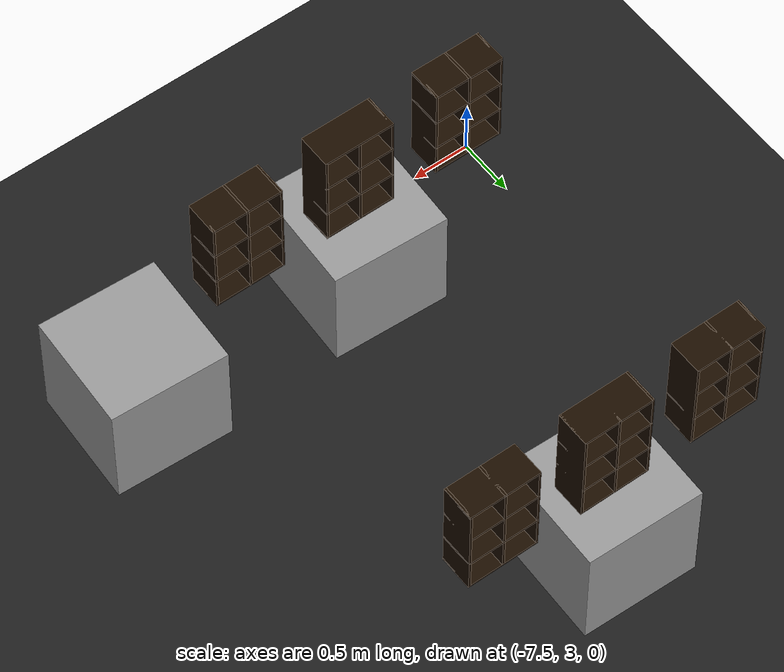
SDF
<sdf version="1.7">
 <world name="default">
  <model name="ground_plane">
   <static>1</static>
   <link name="link">
    <collision name="collision">
     <geometry><plane><normal>0 0 1</normal><size>100 100</size></plane></geometry>
     <surface><friction><ode><mu>100</mu><mu2>50</mu2></ode></friction></surface>
    </collision>
    <visual name="visual">
     <cast_shadows>0</cast_shadows>
     <geometry><plane><normal>0 0 1</normal><size>100 100</size></plane></geometry>
     <material>
      <script><uri>file://media/materials/scripts/gazebo.material</uri><name>Gazebo/BlackTransparent</name></script>
     </material>
    </visual>
   </link>
  </model>
  <model name="unit_box">
   <pose>-6.01457 6.50784 0.5 0 0 -0.028631</pose>
   <link name="link">
    <inertial>
     <mass>1</mass>
     <inertia>
      <ixx>0.166667</ixx>
      <ixy>0</ixy>
      <ixz>0</ixz>
      <iyy>0.166667</iyy>
      <iyz>0</iyz>
      <izz>0.166667</izz>
     </inertia>
    </inertial>
    <collision name="collision"><geometry><box><size>1 1 1</size></box></geometry></collision>
    <visual name="visual">
     <geometry><box><size>1 1 1</size></box></geometry>
     <material>
      <script><name>Gazebo/Grey</name><uri>file://media/materials/scripts/gazebo.material</uri></script>
     </material>
    </visual>
   </link>
  </model>
  <model name="unit_box_0">
   <pose>-6.04021 3.50704 0.5 0 0 -0.048188</pose>
   <link name="link">
    <inertial>
     <mass>1</mass>
     <inertia>
      <ixx>0.166667</ixx>
      <ixy>0</ixy>
      <ixz>0</ixz>
      <iyy>0.166667</iyy>
      <iyz>0</iyz>
      <izz>0.166667</izz>
     </inertia>
    </inertial>
    <collision name="collision"><geometry><box><size>1 1 1</size></box></geometry></collision>
    <visual name="visual">
     <geometry><box><size>1 1 1</size></box></geometry>
     <material>
      <script><name>Gazebo/Grey</name><uri>file://media/materials/scripts/gazebo.material</uri></script>
     </material>
    </visual>
   </link>
  </model>
  <model name="unit_box_10">
   <pose>-4.03641 3.51653 0.5 0 0 -0.047204</pose>
   <link name="link">
    <inertial>
     <mass>1</mass>
     <inertia>
      <ixx>0.166667</ixx>
      <ixy>0</ixy>
      <ixz>0</ixz>
      <iyy>0.166667</iyy>
      <iyz>0</iyz>
      <izz>0.166667</izz>
     </inertia>
    </inertial>
    <collision name="collision"><geometry><box><size>1 1 1</size></box></geometry></collision>
    <visual name="visual">
     <geometry><box><size>1 1 1</size></box></geometry>
     <material>
      <script><name>Gazebo/Grey</name><uri>file://media/materials/scripts/gazebo.material</uri></script>
     </material>
    </visual>
   </link>
  </model>
  <model name="6_Cube_StorageE">
   <link name="Wall_0">
    <pose>0 0 0.01 0 -0 0</pose>
    <inertial>
     <mass>1.6201</mass>
     <inertia><ixx>0.0119</ixx><iyy>0.0631</iyy><izz>0.0513</izz><ixy>0</ixy><ixz>0</ixz><iyz>0</iyz></inertia>
    </inertial>
    <collision name="Wall_0_Collision"><geometry><box><size>0.616 0.296 0.02</size></box></geometry></collision>
    <visual name="Wall_0_Visual">
     <geometry><box><size>0.616 0.296 0.02</size></box></geometry>
     <material>
      <script><uri>file://media/materials/scripts/gazebo.material</uri><name>Gazebo/Grey</name></script>
      <ambient>0.105882 0.0509804 0 1</ambient>
     </material>
    </visual>
   </link>
   <joint name="0_2" type="fixed">
    <pose>-0.308 0 0 0 -0 0</pose>
    <parent>Wall_2</parent>
    <child>Wall_0</child>
    <axis><xyz>1 0 0</xyz><limit><lower>-1e+16</lower><upper>1e+16</upper></limit></axis>
   </joint>
   <joint name="0_12" type="fixed">
    <parent>Wall_12</parent>
    <child>Wall_0</child>
    <axis><xyz>0 0 1</xyz><limit><lower>-1e+16</lower><upper>1e+16</upper></limit></axis>
   </joint>
   <joint name="0_4" type="fixed">
    <pose>0.308 0 0 0 -0 0</pose>
    <parent>Wall_4</parent>
    <child>Wall_0</child>
    <axis><xyz>1 0 0</xyz><limit><lower>-1e+16</lower><upper>1e+16</upper></limit></axis>
   </joint>
   <link name="Wall_10">
    <pose>0 0 0.61 0 -0 0</pose>
    <inertial>
     <mass>1.6201</mass>
     <inertia><ixx>0.0119</ixx><iyy>0.0631</iyy><izz>0.0513</izz><ixy>0</ixy><ixz>0</ixz><iyz>0</iyz></inertia>
    </inertial>
    <collision name="Wall_10_Collision"><geometry><box><size>0.616 0.296 0.02</size></box></geometry></collision>
    <visual name="Wall_10_Visual">
     <geometry><box><size>0.616 0.296 0.02</size></box></geometry>
     <material>
      <script><uri>file://media/materials/scripts/gazebo.material</uri><name>Gazebo/Grey</name></script>
      <ambient>0.105882 0.0509804 0 1</ambient>
     </material>
    </visual>
   </link>
   <joint name="10_2" type="fixed">
    <pose>-0.308 0 0 0 -0 0</pose>
    <parent>Wall_2</parent>
    <child>Wall_10</child>
    <axis><xyz>1 0 0</xyz><limit><lower>-1e+16</lower><upper>1e+16</upper></limit></axis>
   </joint>
   <joint name="10_12" type="fixed">
    <parent>Wall_12</parent>
    <child>Wall_10</child>
    <axis><xyz>0 0 1</xyz><limit><lower>-1e+16</lower><upper>1e+16</upper></limit></axis>
   </joint>
   <joint name="10_4" type="fixed">
    <pose>0.308 0 0 0 -0 0</pose>
    <parent>Wall_4</parent>
    <child>Wall_10</child>
    <axis><xyz>1 0 0</xyz><limit><lower>-1e+16</lower><upper>1e+16</upper></limit></axis>
   </joint>
   <link name="Wall_12">
    <pose>0 0 0.4575 0 -0 0</pose>
    <inertial>
     <mass>2.4065</mass>
     <inertia><ixx>0.0177</ixx><iyy>0.1855</iyy><izz>0.168</izz><ixy>0</ixy><ixz>0</ixz><iyz>0</iyz></inertia>
    </inertial>
    <collision name="Wall_12_Collision"><geometry><box><size>0.02 0.296 0.915</size></box></geometry></collision>
    <visual name="Wall_12_Visual">
     <geometry><box><size>0.02 0.296 0.915</size></box></geometry>
     <material>
      <script><uri>file://media/materials/scripts/gazebo.material</uri><name>Gazebo/Grey</name></script>
      <ambient>0.105882 0.0509804 0 1</ambient>
     </material>
    </visual>
   </link>
   <link name="Wall_2">
    <pose>-0.298 0 0.4575 0 -0 0</pose>
    <inertial>
     <mass>2.4065</mass>
     <inertia><ixx>0.0177</ixx><iyy>0.1855</iyy><izz>0.168</izz><ixy>0</ixy><ixz>0</ixz><iyz>0</iyz></inertia>
    </inertial>
    <collision name="Wall_2_Collision"><geometry><box><size>0.02 0.296 0.915</size></box></geometry></collision>
    <visual name="Wall_2_Visual">
     <geometry><box><size>0.02 0.296 0.915</size></box></geometry>
     <material>
      <script><uri>file://media/materials/scripts/gazebo.material</uri><name>Gazebo/Grey</name></script>
      <ambient>0.105882 0.0509804 0 1</ambient>
     </material>
    </visual>
   </link>
   <link name="Wall_4">
    <pose>0.298 0 0.4575 0 -0 0</pose>
    <inertial>
     <mass>2.4065</mass>
     <inertia><ixx>0.0177</ixx><iyy>0.1855</iyy><izz>0.168</izz><ixy>0</ixy><ixz>0</ixz><iyz>0</iyz></inertia>
    </inertial>
    <collision name="Wall_4_Collision"><geometry><box><size>0.02 0.296 0.915</size></box></geometry></collision>
    <visual name="Wall_4_Visual">
     <geometry><box><size>0.02 0.296 0.915</size></box></geometry>
     <material>
      <script><uri>file://media/materials/scripts/gazebo.material</uri><name>Gazebo/Grey</name></script>
      <ambient>0.105882 0.0509804 0 1</ambient>
     </material>
    </visual>
   </link>
   <link name="Wall_6">
    <pose>0 0 0.905 0 -0 0</pose>
    <inertial>
     <mass>1.6201</mass>
     <inertia><ixx>0.0119</ixx><iyy>0.0631</iyy><izz>0.0513</izz><ixy>0</ixy><ixz>0</ixz><iyz>0</iyz></inertia>
    </inertial>
    <collision name="Wall_6_Collision"><geometry><box><size>0.616 0.296 0.02</size></box></geometry></collision>
    <visual name="Wall_6_Visual">
     <geometry><box><size>0.616 0.296 0.02</size></box></geometry>
     <material>
      <script><uri>file://media/materials/scripts/gazebo.material</uri><name>Gazebo/Grey</name></script>
      <ambient>0.105882 0.0509804 0 1</ambient>
     </material>
    </visual>
   </link>
   <joint name="6_2" type="fixed">
    <pose>-0.308 0 0 0 -0 0</pose>
    <parent>Wall_2</parent>
    <child>Wall_6</child>
    <axis><xyz>2 0 0</xyz><limit><lower>-1e+16</lower><upper>1e+16</upper></limit></axis>
   </joint>
   <joint name="6_12" type="fixed">
    <parent>Wall_12</parent>
    <child>Wall_6</child>
    <axis><xyz>0 0 1</xyz><limit><lower>-1e+16</lower><upper>1e+16</upper></limit></axis>
   </joint>
   <joint name="6_4" type="fixed">
    <pose>0.308 0 0 0 -0 0</pose>
    <parent>Wall_4</parent>
    <child>Wall_6</child>
    <axis><xyz>1 0 0</xyz><limit><lower>-1e+16</lower><upper>1e+16</upper></limit></axis>
   </joint>
   <link name="Wall_8">
    <pose>0 0 0.305 0 -0 0</pose>
    <inertial>
     <mass>1.6201</mass>
     <inertia><ixx>0.0119</ixx><iyy>0.0631</iyy><izz>0.0513</izz><ixy>0</ixy><ixz>0</ixz><iyz>0</iyz></inertia>
    </inertial>
    <collision name="Wall_8_Collision"><geometry><box><size>0.616 0.296 0.02</size></box></geometry></collision>
    <visual name="Wall_8_Visual">
     <geometry><box><size>0.616 0.296 0.02</size></box></geometry>
     <material>
      <script><uri>file://media/materials/scripts/gazebo.material</uri><name>Gazebo/Grey</name></script>
      <ambient>0.105882 0.0509804 0 1</ambient>
     </material>
    </visual>
   </link>
   <joint name="8_2" type="fixed">
    <pose>-0.308 0 0 0 -0 0</pose>
    <parent>Wall_2</parent>
    <child>Wall_8</child>
    <axis><xyz>1 0 0</xyz><limit><lower>-1e+16</lower><upper>1e+16</upper></limit></axis>
   </joint>
   <joint name="8_12" type="fixed">
    <parent>Wall_12</parent>
    <child>Wall_8</child>
    <axis><xyz>0 0 1</xyz><limit><lower>-1e+16</lower><upper>1e+16</upper></limit></axis>
   </joint>
   <joint name="8_4" type="fixed">
    <pose>0.308 0 0 0 -0 0</pose>
    <parent>Wall_4</parent>
    <child>Wall_8</child>
    <axis><xyz>1 0 0</xyz><limit><lower>-1e+16</lower><upper>1e+16</upper></limit></axis>
   </joint>
   <static>1</static>
   <pose>-7 6.5 1.01 0 -0 0</pose>
  </model>
  <model name="6_Cube_StorageE_clone">
   <link name="Wall_0">
    <pose>0 0 0.01 0 -0 0</pose>
    <inertial>
     <mass>1.6201</mass>
     <inertia><ixx>0.0119</ixx><iyy>0.0631</iyy><izz>0.0513</izz><ixy>0</ixy><ixz>0</ixz><iyz>0</iyz></inertia>
    </inertial>
    <collision name="Wall_0_Collision"><geometry><box><size>0.616 0.296 0.02</size></box></geometry></collision>
    <visual name="Wall_0_Visual">
     <geometry><box><size>0.616 0.296 0.02</size></box></geometry>
     <material>
      <script><uri>file://media/materials/scripts/gazebo.material</uri><name>Gazebo/Grey</name></script>
      <ambient>0.105882 0.0509804 0 1</ambient>
     </material>
    </visual>
   </link>
   <joint name="0_2" type="fixed">
    <pose>-0.308 0 0 0 -0 0</pose>
    <parent>Wall_2</parent>
    <child>Wall_0</child>
    <axis><xyz>1 0 0</xyz><limit><lower>-1e+16</lower><upper>1e+16</upper></limit></axis>
   </joint>
   <joint name="0_12" type="fixed">
    <parent>Wall_12</parent>
    <child>Wall_0</child>
    <axis><xyz>0 0 1</xyz><limit><lower>-1e+16</lower><upper>1e+16</upper></limit></axis>
   </joint>
   <joint name="0_4" type="fixed">
    <pose>0.308 0 0 0 -0 0</pose>
    <parent>Wall_4</parent>
    <child>Wall_0</child>
    <axis><xyz>1 0 0</xyz><limit><lower>-1e+16</lower><upper>1e+16</upper></limit></axis>
   </joint>
   <link name="Wall_10">
    <pose>0 0 0.61 0 -0 0</pose>
    <inertial>
     <mass>1.6201</mass>
     <inertia><ixx>0.0119</ixx><iyy>0.0631</iyy><izz>0.0513</izz><ixy>0</ixy><ixz>0</ixz><iyz>0</iyz></inertia>
    </inertial>
    <collision name="Wall_10_Collision"><geometry><box><size>0.616 0.296 0.02</size></box></geometry></collision>
    <visual name="Wall_10_Visual">
     <geometry><box><size>0.616 0.296 0.02</size></box></geometry>
     <material>
      <script><uri>file://media/materials/scripts/gazebo.material</uri><name>Gazebo/Grey</name></script>
      <ambient>0.105882 0.0509804 0 1</ambient>
     </material>
    </visual>
   </link>
   <joint name="10_2" type="fixed">
    <pose>-0.308 0 0 0 -0 0</pose>
    <parent>Wall_2</parent>
    <child>Wall_10</child>
    <axis><xyz>1 0 0</xyz><limit><lower>-1e+16</lower><upper>1e+16</upper></limit></axis>
   </joint>
   <joint name="10_12" type="fixed">
    <parent>Wall_12</parent>
    <child>Wall_10</child>
    <axis><xyz>0 0 1</xyz><limit><lower>-1e+16</lower><upper>1e+16</upper></limit></axis>
   </joint>
   <joint name="10_4" type="fixed">
    <pose>0.308 0 0 0 -0 0</pose>
    <parent>Wall_4</parent>
    <child>Wall_10</child>
    <axis><xyz>1 0 0</xyz><limit><lower>-1e+16</lower><upper>1e+16</upper></limit></axis>
   </joint>
   <link name="Wall_12">
    <pose>0 0 0.4575 0 -0 0</pose>
    <inertial>
     <mass>2.4065</mass>
     <inertia><ixx>0.0177</ixx><iyy>0.1855</iyy><izz>0.168</izz><ixy>0</ixy><ixz>0</ixz><iyz>0</iyz></inertia>
    </inertial>
    <collision name="Wall_12_Collision"><geometry><box><size>0.02 0.296 0.915</size></box></geometry></collision>
    <visual name="Wall_12_Visual">
     <geometry><box><size>0.02 0.296 0.915</size></box></geometry>
     <material>
      <script><uri>file://media/materials/scripts/gazebo.material</uri><name>Gazebo/Grey</name></script>
      <ambient>0.105882 0.0509804 0 1</ambient>
     </material>
    </visual>
   </link>
   <link name="Wall_2">
    <pose>-0.298 0 0.4575 0 -0 0</pose>
    <inertial>
     <mass>2.4065</mass>
     <inertia><ixx>0.0177</ixx><iyy>0.1855</iyy><izz>0.168</izz><ixy>0</ixy><ixz>0</ixz><iyz>0</iyz></inertia>
    </inertial>
    <collision name="Wall_2_Collision"><geometry><box><size>0.02 0.296 0.915</size></box></geometry></collision>
    <visual name="Wall_2_Visual">
     <geometry><box><size>0.02 0.296 0.915</size></box></geometry>
     <material>
      <script><uri>file://media/materials/scripts/gazebo.material</uri><name>Gazebo/Grey</name></script>
      <ambient>0.105882 0.0509804 0 1</ambient>
     </material>
    </visual>
   </link>
   <link name="Wall_4">
    <pose>0.298 0 0.4575 0 -0 0</pose>
    <inertial>
     <mass>2.4065</mass>
     <inertia><ixx>0.0177</ixx><iyy>0.1855</iyy><izz>0.168</izz><ixy>0</ixy><ixz>0</ixz><iyz>0</iyz></inertia>
    </inertial>
    <collision name="Wall_4_Collision"><geometry><box><size>0.02 0.296 0.915</size></box></geometry></collision>
    <visual name="Wall_4_Visual">
     <geometry><box><size>0.02 0.296 0.915</size></box></geometry>
     <material>
      <script><uri>file://media/materials/scripts/gazebo.material</uri><name>Gazebo/Grey</name></script>
      <ambient>0.105882 0.0509804 0 1</ambient>
     </material>
    </visual>
   </link>
   <link name="Wall_6">
    <pose>0 0 0.905 0 -0 0</pose>
    <inertial>
     <mass>1.6201</mass>
     <inertia><ixx>0.0119</ixx><iyy>0.0631</iyy><izz>0.0513</izz><ixy>0</ixy><ixz>0</ixz><iyz>0</iyz></inertia>
    </inertial>
    <collision name="Wall_6_Collision"><geometry><box><size>0.616 0.296 0.02</size></box></geometry></collision>
    <visual name="Wall_6_Visual">
     <geometry><box><size>0.616 0.296 0.02</size></box></geometry>
     <material>
      <script><uri>file://media/materials/scripts/gazebo.material</uri><name>Gazebo/Grey</name></script>
      <ambient>0.105882 0.0509804 0 1</ambient>
     </material>
    </visual>
   </link>
   <joint name="6_2" type="fixed">
    <pose>-0.308 0 0 0 -0 0</pose>
    <parent>Wall_2</parent>
    <child>Wall_6</child>
    <axis><xyz>2 0 0</xyz><limit><lower>-1e+16</lower><upper>1e+16</upper></limit></axis>
   </joint>
   <joint name="6_12" type="fixed">
    <parent>Wall_12</parent>
    <child>Wall_6</child>
    <axis><xyz>0 0 1</xyz><limit><lower>-1e+16</lower><upper>1e+16</upper></limit></axis>
   </joint>
   <joint name="6_4" type="fixed">
    <pose>0.308 0 0 0 -0 0</pose>
    <parent>Wall_4</parent>
    <child>Wall_6</child>
    <axis><xyz>1 0 0</xyz><limit><lower>-1e+16</lower><upper>1e+16</upper></limit></axis>
   </joint>
   <link name="Wall_8">
    <pose>0 0 0.305 0 -0 0</pose>
    <inertial>
     <mass>1.6201</mass>
     <inertia><ixx>0.0119</ixx><iyy>0.0631</iyy><izz>0.0513</izz><ixy>0</ixy><ixz>0</ixz><iyz>0</iyz></inertia>
    </inertial>
    <collision name="Wall_8_Collision"><geometry><box><size>0.616 0.296 0.02</size></box></geometry></collision>
    <visual name="Wall_8_Visual">
     <geometry><box><size>0.616 0.296 0.02</size></box></geometry>
     <material>
      <script><uri>file://media/materials/scripts/gazebo.material</uri><name>Gazebo/Grey</name></script>
      <ambient>0.105882 0.0509804 0 1</ambient>
     </material>
    </visual>
   </link>
   <joint name="8_2" type="fixed">
    <pose>-0.308 0 0 0 -0 0</pose>
    <parent>Wall_2</parent>
    <child>Wall_8</child>
    <axis><xyz>1 0 0</xyz><limit><lower>-1e+16</lower><upper>1e+16</upper></limit></axis>
   </joint>
   <joint name="8_12" type="fixed">
    <parent>Wall_12</parent>
    <child>Wall_8</child>
    <axis><xyz>0 0 1</xyz><limit><lower>-1e+16</lower><upper>1e+16</upper></limit></axis>
   </joint>
   <joint name="8_4" type="fixed">
    <pose>0.308 0 0 0 -0 0</pose>
    <parent>Wall_4</parent>
    <child>Wall_8</child>
    <axis><xyz>1 0 0</xyz><limit><lower>-1e+16</lower><upper>1e+16</upper></limit></axis>
   </joint>
   <static>1</static>
   <pose>-6 6.5 1.01 0 -0 0</pose>
  </model>
  <model name="6_Cube_StorageE_clone_0">
   <link name="Wall_0">
    <pose>0 0 0.01 0 -0 0</pose>
    <inertial>
     <mass>1.6201</mass>
     <inertia><ixx>0.0119</ixx><iyy>0.0631</iyy><izz>0.0513</izz><ixy>0</ixy><ixz>0</ixz><iyz>0</iyz></inertia>
    </inertial>
    <collision name="Wall_0_Collision"><geometry><box><size>0.616 0.296 0.02</size></box></geometry></collision>
    <visual name="Wall_0_Visual">
     <geometry><box><size>0.616 0.296 0.02</size></box></geometry>
     <material>
      <script><uri>file://media/materials/scripts/gazebo.material</uri><name>Gazebo/Grey</name></script>
      <ambient>0.105882 0.0509804 0 1</ambient>
     </material>
    </visual>
   </link>
   <joint name="0_2" type="fixed">
    <pose>-0.308 0 0 0 -0 0</pose>
    <parent>Wall_2</parent>
    <child>Wall_0</child>
    <axis><xyz>1 0 0</xyz><limit><lower>-1e+16</lower><upper>1e+16</upper></limit></axis>
   </joint>
   <joint name="0_12" type="fixed">
    <parent>Wall_12</parent>
    <child>Wall_0</child>
    <axis><xyz>0 0 1</xyz><limit><lower>-1e+16</lower><upper>1e+16</upper></limit></axis>
   </joint>
   <joint name="0_4" type="fixed">
    <pose>0.308 0 0 0 -0 0</pose>
    <parent>Wall_4</parent>
    <child>Wall_0</child>
    <axis><xyz>1 0 0</xyz><limit><lower>-1e+16</lower><upper>1e+16</upper></limit></axis>
   </joint>
   <link name="Wall_10">
    <pose>0 0 0.61 0 -0 0</pose>
    <inertial>
     <mass>1.6201</mass>
     <inertia><ixx>0.0119</ixx><iyy>0.0631</iyy><izz>0.0513</izz><ixy>0</ixy><ixz>0</ixz><iyz>0</iyz></inertia>
    </inertial>
    <collision name="Wall_10_Collision"><geometry><box><size>0.616 0.296 0.02</size></box></geometry></collision>
    <visual name="Wall_10_Visual">
     <geometry><box><size>0.616 0.296 0.02</size></box></geometry>
     <material>
      <script><uri>file://media/materials/scripts/gazebo.material</uri><name>Gazebo/Grey</name></script>
      <ambient>0.105882 0.0509804 0 1</ambient>
     </material>
    </visual>
   </link>
   <joint name="10_2" type="fixed">
    <pose>-0.308 0 0 0 -0 0</pose>
    <parent>Wall_2</parent>
    <child>Wall_10</child>
    <axis><xyz>1 0 0</xyz><limit><lower>-1e+16</lower><upper>1e+16</upper></limit></axis>
   </joint>
   <joint name="10_12" type="fixed">
    <parent>Wall_12</parent>
    <child>Wall_10</child>
    <axis><xyz>0 0 1</xyz><limit><lower>-1e+16</lower><upper>1e+16</upper></limit></axis>
   </joint>
   <joint name="10_4" type="fixed">
    <pose>0.308 0 0 0 -0 0</pose>
    <parent>Wall_4</parent>
    <child>Wall_10</child>
    <axis><xyz>1 0 0</xyz><limit><lower>-1e+16</lower><upper>1e+16</upper></limit></axis>
   </joint>
   <link name="Wall_12">
    <pose>0 0 0.4575 0 -0 0</pose>
    <inertial>
     <mass>2.4065</mass>
     <inertia><ixx>0.0177</ixx><iyy>0.1855</iyy><izz>0.168</izz><ixy>0</ixy><ixz>0</ixz><iyz>0</iyz></inertia>
    </inertial>
    <collision name="Wall_12_Collision"><geometry><box><size>0.02 0.296 0.915</size></box></geometry></collision>
    <visual name="Wall_12_Visual">
     <geometry><box><size>0.02 0.296 0.915</size></box></geometry>
     <material>
      <script><uri>file://media/materials/scripts/gazebo.material</uri><name>Gazebo/Grey</name></script>
      <ambient>0.105882 0.0509804 0 1</ambient>
     </material>
    </visual>
   </link>
   <link name="Wall_2">
    <pose>-0.298 0 0.4575 0 -0 0</pose>
    <inertial>
     <mass>2.4065</mass>
     <inertia><ixx>0.0177</ixx><iyy>0.1855</iyy><izz>0.168</izz><ixy>0</ixy><ixz>0</ixz><iyz>0</iyz></inertia>
    </inertial>
    <collision name="Wall_2_Collision"><geometry><box><size>0.02 0.296 0.915</size></box></geometry></collision>
    <visual name="Wall_2_Visual">
     <geometry><box><size>0.02 0.296 0.915</size></box></geometry>
     <material>
      <script><uri>file://media/materials/scripts/gazebo.material</uri><name>Gazebo/Grey</name></script>
      <ambient>0.105882 0.0509804 0 1</ambient>
     </material>
    </visual>
   </link>
   <link name="Wall_4">
    <pose>0.298 0 0.4575 0 -0 0</pose>
    <inertial>
     <mass>2.4065</mass>
     <inertia><ixx>0.0177</ixx><iyy>0.1855</iyy><izz>0.168</izz><ixy>0</ixy><ixz>0</ixz><iyz>0</iyz></inertia>
    </inertial>
    <collision name="Wall_4_Collision"><geometry><box><size>0.02 0.296 0.915</size></box></geometry></collision>
    <visual name="Wall_4_Visual">
     <geometry><box><size>0.02 0.296 0.915</size></box></geometry>
     <material>
      <script><uri>file://media/materials/scripts/gazebo.material</uri><name>Gazebo/Grey</name></script>
      <ambient>0.105882 0.0509804 0 1</ambient>
     </material>
    </visual>
   </link>
   <link name="Wall_6">
    <pose>0 0 0.905 0 -0 0</pose>
    <inertial>
     <mass>1.6201</mass>
     <inertia><ixx>0.0119</ixx><iyy>0.0631</iyy><izz>0.0513</izz><ixy>0</ixy><ixz>0</ixz><iyz>0</iyz></inertia>
    </inertial>
    <collision name="Wall_6_Collision"><geometry><box><size>0.616 0.296 0.02</size></box></geometry></collision>
    <visual name="Wall_6_Visual">
     <geometry><box><size>0.616 0.296 0.02</size></box></geometry>
     <material>
      <script><uri>file://media/materials/scripts/gazebo.material</uri><name>Gazebo/Grey</name></script>
      <ambient>0.105882 0.0509804 0 1</ambient>
     </material>
    </visual>
   </link>
   <joint name="6_2" type="fixed">
    <pose>-0.308 0 0 0 -0 0</pose>
    <parent>Wall_2</parent>
    <child>Wall_6</child>
    <axis><xyz>2 0 0</xyz><limit><lower>-1e+16</lower><upper>1e+16</upper></limit></axis>
   </joint>
   <joint name="6_12" type="fixed">
    <parent>Wall_12</parent>
    <child>Wall_6</child>
    <axis><xyz>0 0 1</xyz><limit><lower>-1e+16</lower><upper>1e+16</upper></limit></axis>
   </joint>
   <joint name="6_4" type="fixed">
    <pose>0.308 0 0 0 -0 0</pose>
    <parent>Wall_4</parent>
    <child>Wall_6</child>
    <axis><xyz>1 0 0</xyz><limit><lower>-1e+16</lower><upper>1e+16</upper></limit></axis>
   </joint>
   <link name="Wall_8">
    <pose>0 0 0.305 0 -0 0</pose>
    <inertial>
     <mass>1.6201</mass>
     <inertia><ixx>0.0119</ixx><iyy>0.0631</iyy><izz>0.0513</izz><ixy>0</ixy><ixz>0</ixz><iyz>0</iyz></inertia>
    </inertial>
    <collision name="Wall_8_Collision"><geometry><box><size>0.616 0.296 0.02</size></box></geometry></collision>
    <visual name="Wall_8_Visual">
     <geometry><box><size>0.616 0.296 0.02</size></box></geometry>
     <material>
      <script><uri>file://media/materials/scripts/gazebo.material</uri><name>Gazebo/Grey</name></script>
      <ambient>0.105882 0.0509804 0 1</ambient>
     </material>
    </visual>
   </link>
   <joint name="8_2" type="fixed">
    <pose>-0.308 0 0 0 -0 0</pose>
    <parent>Wall_2</parent>
    <child>Wall_8</child>
    <axis><xyz>1 0 0</xyz><limit><lower>-1e+16</lower><upper>1e+16</upper></limit></axis>
   </joint>
   <joint name="8_12" type="fixed">
    <parent>Wall_12</parent>
    <child>Wall_8</child>
    <axis><xyz>0 0 1</xyz><limit><lower>-1e+16</lower><upper>1e+16</upper></limit></axis>
   </joint>
   <joint name="8_4" type="fixed">
    <pose>0.308 0 0 0 -0 0</pose>
    <parent>Wall_4</parent>
    <child>Wall_8</child>
    <axis><xyz>1 0 0</xyz><limit><lower>-1e+16</lower><upper>1e+16</upper></limit></axis>
   </joint>
   <static>1</static>
   <pose>-5 6.5 1.01 0 -0 0</pose>
  </model>
  <model name="6_Cube_StorageE_clone_25">
   <link name="Wall_0">
    <pose>0 0 0.01 0 -0 0</pose>
    <inertial>
     <mass>1.6201</mass>
     <inertia><ixx>0.0119</ixx><iyy>0.0631</iyy><izz>0.0513</izz><ixy>0</ixy><ixz>0</ixz><iyz>0</iyz></inertia>
    </inertial>
    <collision name="Wall_0_Collision"><geometry><box><size>0.616 0.296 0.02</size></box></geometry></collision>
    <visual name="Wall_0_Visual">
     <geometry><box><size>0.616 0.296 0.02</size></box></geometry>
     <material>
      <script><uri>file://media/materials/scripts/gazebo.material</uri><name>Gazebo/Grey</name></script>
      <ambient>0.105882 0.0509804 0 1</ambient>
     </material>
    </visual>
   </link>
   <joint name="0_2" type="fixed">
    <pose>-0.308 0 0 0 -0 0</pose>
    <parent>Wall_2</parent>
    <child>Wall_0</child>
    <axis><xyz>1 0 0</xyz><limit><lower>-1e+16</lower><upper>1e+16</upper></limit></axis>
   </joint>
   <joint name="0_12" type="fixed">
    <parent>Wall_12</parent>
    <child>Wall_0</child>
    <axis><xyz>0 0 1</xyz><limit><lower>-1e+16</lower><upper>1e+16</upper></limit></axis>
   </joint>
   <joint name="0_4" type="fixed">
    <pose>0.308 0 0 0 -0 0</pose>
    <parent>Wall_4</parent>
    <child>Wall_0</child>
    <axis><xyz>1 0 0</xyz><limit><lower>-1e+16</lower><upper>1e+16</upper></limit></axis>
   </joint>
   <link name="Wall_10">
    <pose>0 0 0.61 0 -0 0</pose>
    <inertial>
     <mass>1.6201</mass>
     <inertia><ixx>0.0119</ixx><iyy>0.0631</iyy><izz>0.0513</izz><ixy>0</ixy><ixz>0</ixz><iyz>0</iyz></inertia>
    </inertial>
    <collision name="Wall_10_Collision"><geometry><box><size>0.616 0.296 0.02</size></box></geometry></collision>
    <visual name="Wall_10_Visual">
     <geometry><box><size>0.616 0.296 0.02</size></box></geometry>
     <material>
      <script><uri>file://media/materials/scripts/gazebo.material</uri><name>Gazebo/Grey</name></script>
      <ambient>0.105882 0.0509804 0 1</ambient>
     </material>
    </visual>
   </link>
   <joint name="10_2" type="fixed">
    <pose>-0.308 0 0 0 -0 0</pose>
    <parent>Wall_2</parent>
    <child>Wall_10</child>
    <axis><xyz>1 0 0</xyz><limit><lower>-1e+16</lower><upper>1e+16</upper></limit></axis>
   </joint>
   <joint name="10_12" type="fixed">
    <parent>Wall_12</parent>
    <child>Wall_10</child>
    <axis><xyz>0 0 1</xyz><limit><lower>-1e+16</lower><upper>1e+16</upper></limit></axis>
   </joint>
   <joint name="10_4" type="fixed">
    <pose>0.308 0 0 0 -0 0</pose>
    <parent>Wall_4</parent>
    <child>Wall_10</child>
    <axis><xyz>1 0 0</xyz><limit><lower>-1e+16</lower><upper>1e+16</upper></limit></axis>
   </joint>
   <link name="Wall_12">
    <pose>0 0 0.4575 0 -0 0</pose>
    <inertial>
     <mass>2.4065</mass>
     <inertia><ixx>0.0177</ixx><iyy>0.1855</iyy><izz>0.168</izz><ixy>0</ixy><ixz>0</ixz><iyz>0</iyz></inertia>
    </inertial>
    <collision name="Wall_12_Collision"><geometry><box><size>0.02 0.296 0.915</size></box></geometry></collision>
    <visual name="Wall_12_Visual">
     <geometry><box><size>0.02 0.296 0.915</size></box></geometry>
     <material>
      <script><uri>file://media/materials/scripts/gazebo.material</uri><name>Gazebo/Grey</name></script>
      <ambient>0.105882 0.0509804 0 1</ambient>
     </material>
    </visual>
   </link>
   <link name="Wall_2">
    <pose>-0.298 0 0.4575 0 -0 0</pose>
    <inertial>
     <mass>2.4065</mass>
     <inertia><ixx>0.0177</ixx><iyy>0.1855</iyy><izz>0.168</izz><ixy>0</ixy><ixz>0</ixz><iyz>0</iyz></inertia>
    </inertial>
    <collision name="Wall_2_Collision"><geometry><box><size>0.02 0.296 0.915</size></box></geometry></collision>
    <visual name="Wall_2_Visual">
     <geometry><box><size>0.02 0.296 0.915</size></box></geometry>
     <material>
      <script><uri>file://media/materials/scripts/gazebo.material</uri><name>Gazebo/Grey</name></script>
      <ambient>0.105882 0.0509804 0 1</ambient>
     </material>
    </visual>
   </link>
   <link name="Wall_4">
    <pose>0.298 0 0.4575 0 -0 0</pose>
    <inertial>
     <mass>2.4065</mass>
     <inertia><ixx>0.0177</ixx><iyy>0.1855</iyy><izz>0.168</izz><ixy>0</ixy><ixz>0</ixz><iyz>0</iyz></inertia>
    </inertial>
    <collision name="Wall_4_Collision"><geometry><box><size>0.02 0.296 0.915</size></box></geometry></collision>
    <visual name="Wall_4_Visual">
     <geometry><box><size>0.02 0.296 0.915</size></box></geometry>
     <material>
      <script><uri>file://media/materials/scripts/gazebo.material</uri><name>Gazebo/Grey</name></script>
      <ambient>0.105882 0.0509804 0 1</ambient>
     </material>
    </visual>
   </link>
   <link name="Wall_6">
    <pose>0 0 0.905 0 -0 0</pose>
    <inertial>
     <mass>1.6201</mass>
     <inertia><ixx>0.0119</ixx><iyy>0.0631</iyy><izz>0.0513</izz><ixy>0</ixy><ixz>0</ixz><iyz>0</iyz></inertia>
    </inertial>
    <collision name="Wall_6_Collision"><geometry><box><size>0.616 0.296 0.02</size></box></geometry></collision>
    <visual name="Wall_6_Visual">
     <geometry><box><size>0.616 0.296 0.02</size></box></geometry>
     <material>
      <script><uri>file://media/materials/scripts/gazebo.material</uri><name>Gazebo/Grey</name></script>
      <ambient>0.105882 0.0509804 0 1</ambient>
     </material>
    </visual>
   </link>
   <joint name="6_2" type="fixed">
    <pose>-0.308 0 0 0 -0 0</pose>
    <parent>Wall_2</parent>
    <child>Wall_6</child>
    <axis><xyz>2 0 0</xyz><limit><lower>-1e+16</lower><upper>1e+16</upper></limit></axis>
   </joint>
   <joint name="6_12" type="fixed">
    <parent>Wall_12</parent>
    <child>Wall_6</child>
    <axis><xyz>0 0 1</xyz><limit><lower>-1e+16</lower><upper>1e+16</upper></limit></axis>
   </joint>
   <joint name="6_4" type="fixed">
    <pose>0.308 0 0 0 -0 0</pose>
    <parent>Wall_4</parent>
    <child>Wall_6</child>
    <axis><xyz>1 0 0</xyz><limit><lower>-1e+16</lower><upper>1e+16</upper></limit></axis>
   </joint>
   <link name="Wall_8">
    <pose>0 0 0.305 0 -0 0</pose>
    <inertial>
     <mass>1.6201</mass>
     <inertia><ixx>0.0119</ixx><iyy>0.0631</iyy><izz>0.0513</izz><ixy>0</ixy><ixz>0</ixz><iyz>0</iyz></inertia>
    </inertial>
    <collision name="Wall_8_Collision"><geometry><box><size>0.616 0.296 0.02</size></box></geometry></collision>
    <visual name="Wall_8_Visual">
     <geometry><box><size>0.616 0.296 0.02</size></box></geometry>
     <material>
      <script><uri>file://media/materials/scripts/gazebo.material</uri><name>Gazebo/Grey</name></script>
      <ambient>0.105882 0.0509804 0 1</ambient>
     </material>
    </visual>
   </link>
   <joint name="8_2" type="fixed">
    <pose>-0.308 0 0 0 -0 0</pose>
    <parent>Wall_2</parent>
    <child>Wall_8</child>
    <axis><xyz>1 0 0</xyz><limit><lower>-1e+16</lower><upper>1e+16</upper></limit></axis>
   </joint>
   <joint name="8_12" type="fixed">
    <parent>Wall_12</parent>
    <child>Wall_8</child>
    <axis><xyz>0 0 1</xyz><limit><lower>-1e+16</lower><upper>1e+16</upper></limit></axis>
   </joint>
   <joint name="8_4" type="fixed">
    <pose>0.308 0 0 0 -0 0</pose>
    <parent>Wall_4</parent>
    <child>Wall_8</child>
    <axis><xyz>1 0 0</xyz><limit><lower>-1e+16</lower><upper>1e+16</upper></limit></axis>
   </joint>
   <static>1</static>
   <pose>-5 3.5 1.01 0 -0 0</pose>
  </model>
  <model name="6_Cube_StorageE_clone_26">
   <link name="Wall_0">
    <pose>0 0 0.01 0 -0 0</pose>
    <inertial>
     <mass>1.6201</mass>
     <inertia><ixx>0.0119</ixx><iyy>0.0631</iyy><izz>0.0513</izz><ixy>0</ixy><ixz>0</ixz><iyz>0</iyz></inertia>
    </inertial>
    <collision name="Wall_0_Collision"><geometry><box><size>0.616 0.296 0.02</size></box></geometry></collision>
    <visual name="Wall_0_Visual">
     <geometry><box><size>0.616 0.296 0.02</size></box></geometry>
     <material>
      <script><uri>file://media/materials/scripts/gazebo.material</uri><name>Gazebo/Grey</name></script>
      <ambient>0.105882 0.0509804 0 1</ambient>
     </material>
    </visual>
   </link>
   <joint name="0_2" type="fixed">
    <pose>-0.308 0 0 0 -0 0</pose>
    <parent>Wall_2</parent>
    <child>Wall_0</child>
    <axis><xyz>1 0 0</xyz><limit><lower>-1e+16</lower><upper>1e+16</upper></limit></axis>
   </joint>
   <joint name="0_12" type="fixed">
    <parent>Wall_12</parent>
    <child>Wall_0</child>
    <axis><xyz>0 0 1</xyz><limit><lower>-1e+16</lower><upper>1e+16</upper></limit></axis>
   </joint>
   <joint name="0_4" type="fixed">
    <pose>0.308 0 0 0 -0 0</pose>
    <parent>Wall_4</parent>
    <child>Wall_0</child>
    <axis><xyz>1 0 0</xyz><limit><lower>-1e+16</lower><upper>1e+16</upper></limit></axis>
   </joint>
   <link name="Wall_10">
    <pose>0 0 0.61 0 -0 0</pose>
    <inertial>
     <mass>1.6201</mass>
     <inertia><ixx>0.0119</ixx><iyy>0.0631</iyy><izz>0.0513</izz><ixy>0</ixy><ixz>0</ixz><iyz>0</iyz></inertia>
    </inertial>
    <collision name="Wall_10_Collision"><geometry><box><size>0.616 0.296 0.02</size></box></geometry></collision>
    <visual name="Wall_10_Visual">
     <geometry><box><size>0.616 0.296 0.02</size></box></geometry>
     <material>
      <script><uri>file://media/materials/scripts/gazebo.material</uri><name>Gazebo/Grey</name></script>
      <ambient>0.105882 0.0509804 0 1</ambient>
     </material>
    </visual>
   </link>
   <joint name="10_2" type="fixed">
    <pose>-0.308 0 0 0 -0 0</pose>
    <parent>Wall_2</parent>
    <child>Wall_10</child>
    <axis><xyz>1 0 0</xyz><limit><lower>-1e+16</lower><upper>1e+16</upper></limit></axis>
   </joint>
   <joint name="10_12" type="fixed">
    <parent>Wall_12</parent>
    <child>Wall_10</child>
    <axis><xyz>0 0 1</xyz><limit><lower>-1e+16</lower><upper>1e+16</upper></limit></axis>
   </joint>
   <joint name="10_4" type="fixed">
    <pose>0.308 0 0 0 -0 0</pose>
    <parent>Wall_4</parent>
    <child>Wall_10</child>
    <axis><xyz>1 0 0</xyz><limit><lower>-1e+16</lower><upper>1e+16</upper></limit></axis>
   </joint>
   <link name="Wall_12">
    <pose>0 0 0.4575 0 -0 0</pose>
    <inertial>
     <mass>2.4065</mass>
     <inertia><ixx>0.0177</ixx><iyy>0.1855</iyy><izz>0.168</izz><ixy>0</ixy><ixz>0</ixz><iyz>0</iyz></inertia>
    </inertial>
    <collision name="Wall_12_Collision"><geometry><box><size>0.02 0.296 0.915</size></box></geometry></collision>
    <visual name="Wall_12_Visual">
     <geometry><box><size>0.02 0.296 0.915</size></box></geometry>
     <material>
      <script><uri>file://media/materials/scripts/gazebo.material</uri><name>Gazebo/Grey</name></script>
      <ambient>0.105882 0.0509804 0 1</ambient>
     </material>
    </visual>
   </link>
   <link name="Wall_2">
    <pose>-0.298 0 0.4575 0 -0 0</pose>
    <inertial>
     <mass>2.4065</mass>
     <inertia><ixx>0.0177</ixx><iyy>0.1855</iyy><izz>0.168</izz><ixy>0</ixy><ixz>0</ixz><iyz>0</iyz></inertia>
    </inertial>
    <collision name="Wall_2_Collision"><geometry><box><size>0.02 0.296 0.915</size></box></geometry></collision>
    <visual name="Wall_2_Visual">
     <geometry><box><size>0.02 0.296 0.915</size></box></geometry>
     <material>
      <script><uri>file://media/materials/scripts/gazebo.material</uri><name>Gazebo/Grey</name></script>
      <ambient>0.105882 0.0509804 0 1</ambient>
     </material>
    </visual>
   </link>
   <link name="Wall_4">
    <pose>0.298 0 0.4575 0 -0 0</pose>
    <inertial>
     <mass>2.4065</mass>
     <inertia><ixx>0.0177</ixx><iyy>0.1855</iyy><izz>0.168</izz><ixy>0</ixy><ixz>0</ixz><iyz>0</iyz></inertia>
    </inertial>
    <collision name="Wall_4_Collision"><geometry><box><size>0.02 0.296 0.915</size></box></geometry></collision>
    <visual name="Wall_4_Visual">
     <geometry><box><size>0.02 0.296 0.915</size></box></geometry>
     <material>
      <script><uri>file://media/materials/scripts/gazebo.material</uri><name>Gazebo/Grey</name></script>
      <ambient>0.105882 0.0509804 0 1</ambient>
     </material>
    </visual>
   </link>
   <link name="Wall_6">
    <pose>0 0 0.905 0 -0 0</pose>
    <inertial>
     <mass>1.6201</mass>
     <inertia><ixx>0.0119</ixx><iyy>0.0631</iyy><izz>0.0513</izz><ixy>0</ixy><ixz>0</ixz><iyz>0</iyz></inertia>
    </inertial>
    <collision name="Wall_6_Collision"><geometry><box><size>0.616 0.296 0.02</size></box></geometry></collision>
    <visual name="Wall_6_Visual">
     <geometry><box><size>0.616 0.296 0.02</size></box></geometry>
     <material>
      <script><uri>file://media/materials/scripts/gazebo.material</uri><name>Gazebo/Grey</name></script>
      <ambient>0.105882 0.0509804 0 1</ambient>
     </material>
    </visual>
   </link>
   <joint name="6_2" type="fixed">
    <pose>-0.308 0 0 0 -0 0</pose>
    <parent>Wall_2</parent>
    <child>Wall_6</child>
    <axis><xyz>2 0 0</xyz><limit><lower>-1e+16</lower><upper>1e+16</upper></limit></axis>
   </joint>
   <joint name="6_12" type="fixed">
    <parent>Wall_12</parent>
    <child>Wall_6</child>
    <axis><xyz>0 0 1</xyz><limit><lower>-1e+16</lower><upper>1e+16</upper></limit></axis>
   </joint>
   <joint name="6_4" type="fixed">
    <pose>0.308 0 0 0 -0 0</pose>
    <parent>Wall_4</parent>
    <child>Wall_6</child>
    <axis><xyz>1 0 0</xyz><limit><lower>-1e+16</lower><upper>1e+16</upper></limit></axis>
   </joint>
   <link name="Wall_8">
    <pose>0 0 0.305 0 -0 0</pose>
    <inertial>
     <mass>1.6201</mass>
     <inertia><ixx>0.0119</ixx><iyy>0.0631</iyy><izz>0.0513</izz><ixy>0</ixy><ixz>0</ixz><iyz>0</iyz></inertia>
    </inertial>
    <collision name="Wall_8_Collision"><geometry><box><size>0.616 0.296 0.02</size></box></geometry></collision>
    <visual name="Wall_8_Visual">
     <geometry><box><size>0.616 0.296 0.02</size></box></geometry>
     <material>
      <script><uri>file://media/materials/scripts/gazebo.material</uri><name>Gazebo/Grey</name></script>
      <ambient>0.105882 0.0509804 0 1</ambient>
     </material>
    </visual>
   </link>
   <joint name="8_2" type="fixed">
    <pose>-0.308 0 0 0 -0 0</pose>
    <parent>Wall_2</parent>
    <child>Wall_8</child>
    <axis><xyz>1 0 0</xyz><limit><lower>-1e+16</lower><upper>1e+16</upper></limit></axis>
   </joint>
   <joint name="8_12" type="fixed">
    <parent>Wall_12</parent>
    <child>Wall_8</child>
    <axis><xyz>0 0 1</xyz><limit><lower>-1e+16</lower><upper>1e+16</upper></limit></axis>
   </joint>
   <joint name="8_4" type="fixed">
    <pose>0.308 0 0 0 -0 0</pose>
    <parent>Wall_4</parent>
    <child>Wall_8</child>
    <axis><xyz>1 0 0</xyz><limit><lower>-1e+16</lower><upper>1e+16</upper></limit></axis>
   </joint>
   <static>1</static>
   <pose>-6 3.5 1.01 0 -0 0</pose>
  </model>
  <model name="6_Cube_StorageE_clone_27">
   <link name="Wall_0">
    <pose>0 0 0.01 0 -0 0</pose>
    <inertial>
     <mass>1.6201</mass>
     <inertia><ixx>0.0119</ixx><iyy>0.0631</iyy><izz>0.0513</izz><ixy>0</ixy><ixz>0</ixz><iyz>0</iyz></inertia>
    </inertial>
    <collision name="Wall_0_Collision"><geometry><box><size>0.616 0.296 0.02</size></box></geometry></collision>
    <visual name="Wall_0_Visual">
     <geometry><box><size>0.616 0.296 0.02</size></box></geometry>
     <material>
      <script><uri>file://media/materials/scripts/gazebo.material</uri><name>Gazebo/Grey</name></script>
      <ambient>0.105882 0.0509804 0 1</ambient>
     </material>
    </visual>
   </link>
   <joint name="0_2" type="fixed">
    <pose>-0.308 0 0 0 -0 0</pose>
    <parent>Wall_2</parent>
    <child>Wall_0</child>
    <axis><xyz>1 0 0</xyz><limit><lower>-1e+16</lower><upper>1e+16</upper></limit></axis>
   </joint>
   <joint name="0_12" type="fixed">
    <parent>Wall_12</parent>
    <child>Wall_0</child>
    <axis><xyz>0 0 1</xyz><limit><lower>-1e+16</lower><upper>1e+16</upper></limit></axis>
   </joint>
   <joint name="0_4" type="fixed">
    <pose>0.308 0 0 0 -0 0</pose>
    <parent>Wall_4</parent>
    <child>Wall_0</child>
    <axis><xyz>1 0 0</xyz><limit><lower>-1e+16</lower><upper>1e+16</upper></limit></axis>
   </joint>
   <link name="Wall_10">
    <pose>0 0 0.61 0 -0 0</pose>
    <inertial>
     <mass>1.6201</mass>
     <inertia><ixx>0.0119</ixx><iyy>0.0631</iyy><izz>0.0513</izz><ixy>0</ixy><ixz>0</ixz><iyz>0</iyz></inertia>
    </inertial>
    <collision name="Wall_10_Collision"><geometry><box><size>0.616 0.296 0.02</size></box></geometry></collision>
    <visual name="Wall_10_Visual">
     <geometry><box><size>0.616 0.296 0.02</size></box></geometry>
     <material>
      <script><uri>file://media/materials/scripts/gazebo.material</uri><name>Gazebo/Grey</name></script>
      <ambient>0.105882 0.0509804 0 1</ambient>
     </material>
    </visual>
   </link>
   <joint name="10_2" type="fixed">
    <pose>-0.308 0 0 0 -0 0</pose>
    <parent>Wall_2</parent>
    <child>Wall_10</child>
    <axis><xyz>1 0 0</xyz><limit><lower>-1e+16</lower><upper>1e+16</upper></limit></axis>
   </joint>
   <joint name="10_12" type="fixed">
    <parent>Wall_12</parent>
    <child>Wall_10</child>
    <axis><xyz>0 0 1</xyz><limit><lower>-1e+16</lower><upper>1e+16</upper></limit></axis>
   </joint>
   <joint name="10_4" type="fixed">
    <pose>0.308 0 0 0 -0 0</pose>
    <parent>Wall_4</parent>
    <child>Wall_10</child>
    <axis><xyz>1 0 0</xyz><limit><lower>-1e+16</lower><upper>1e+16</upper></limit></axis>
   </joint>
   <link name="Wall_12">
    <pose>0 0 0.4575 0 -0 0</pose>
    <inertial>
     <mass>2.4065</mass>
     <inertia><ixx>0.0177</ixx><iyy>0.1855</iyy><izz>0.168</izz><ixy>0</ixy><ixz>0</ixz><iyz>0</iyz></inertia>
    </inertial>
    <collision name="Wall_12_Collision"><geometry><box><size>0.02 0.296 0.915</size></box></geometry></collision>
    <visual name="Wall_12_Visual">
     <geometry><box><size>0.02 0.296 0.915</size></box></geometry>
     <material>
      <script><uri>file://media/materials/scripts/gazebo.material</uri><name>Gazebo/Grey</name></script>
      <ambient>0.105882 0.0509804 0 1</ambient>
     </material>
    </visual>
   </link>
   <link name="Wall_2">
    <pose>-0.298 0 0.4575 0 -0 0</pose>
    <inertial>
     <mass>2.4065</mass>
     <inertia><ixx>0.0177</ixx><iyy>0.1855</iyy><izz>0.168</izz><ixy>0</ixy><ixz>0</ixz><iyz>0</iyz></inertia>
    </inertial>
    <collision name="Wall_2_Collision"><geometry><box><size>0.02 0.296 0.915</size></box></geometry></collision>
    <visual name="Wall_2_Visual">
     <geometry><box><size>0.02 0.296 0.915</size></box></geometry>
     <material>
      <script><uri>file://media/materials/scripts/gazebo.material</uri><name>Gazebo/Grey</name></script>
      <ambient>0.105882 0.0509804 0 1</ambient>
     </material>
    </visual>
   </link>
   <link name="Wall_4">
    <pose>0.298 0 0.4575 0 -0 0</pose>
    <inertial>
     <mass>2.4065</mass>
     <inertia><ixx>0.0177</ixx><iyy>0.1855</iyy><izz>0.168</izz><ixy>0</ixy><ixz>0</ixz><iyz>0</iyz></inertia>
    </inertial>
    <collision name="Wall_4_Collision"><geometry><box><size>0.02 0.296 0.915</size></box></geometry></collision>
    <visual name="Wall_4_Visual">
     <geometry><box><size>0.02 0.296 0.915</size></box></geometry>
     <material>
      <script><uri>file://media/materials/scripts/gazebo.material</uri><name>Gazebo/Grey</name></script>
      <ambient>0.105882 0.0509804 0 1</ambient>
     </material>
    </visual>
   </link>
   <link name="Wall_6">
    <pose>0 0 0.905 0 -0 0</pose>
    <inertial>
     <mass>1.6201</mass>
     <inertia><ixx>0.0119</ixx><iyy>0.0631</iyy><izz>0.0513</izz><ixy>0</ixy><ixz>0</ixz><iyz>0</iyz></inertia>
    </inertial>
    <collision name="Wall_6_Collision"><geometry><box><size>0.616 0.296 0.02</size></box></geometry></collision>
    <visual name="Wall_6_Visual">
     <geometry><box><size>0.616 0.296 0.02</size></box></geometry>
     <material>
      <script><uri>file://media/materials/scripts/gazebo.material</uri><name>Gazebo/Grey</name></script>
      <ambient>0.105882 0.0509804 0 1</ambient>
     </material>
    </visual>
   </link>
   <joint name="6_2" type="fixed">
    <pose>-0.308 0 0 0 -0 0</pose>
    <parent>Wall_2</parent>
    <child>Wall_6</child>
    <axis><xyz>2 0 0</xyz><limit><lower>-1e+16</lower><upper>1e+16</upper></limit></axis>
   </joint>
   <joint name="6_12" type="fixed">
    <parent>Wall_12</parent>
    <child>Wall_6</child>
    <axis><xyz>0 0 1</xyz><limit><lower>-1e+16</lower><upper>1e+16</upper></limit></axis>
   </joint>
   <joint name="6_4" type="fixed">
    <pose>0.308 0 0 0 -0 0</pose>
    <parent>Wall_4</parent>
    <child>Wall_6</child>
    <axis><xyz>1 0 0</xyz><limit><lower>-1e+16</lower><upper>1e+16</upper></limit></axis>
   </joint>
   <link name="Wall_8">
    <pose>0 0 0.305 0 -0 0</pose>
    <inertial>
     <mass>1.6201</mass>
     <inertia><ixx>0.0119</ixx><iyy>0.0631</iyy><izz>0.0513</izz><ixy>0</ixy><ixz>0</ixz><iyz>0</iyz></inertia>
    </inertial>
    <collision name="Wall_8_Collision"><geometry><box><size>0.616 0.296 0.02</size></box></geometry></collision>
    <visual name="Wall_8_Visual">
     <geometry><box><size>0.616 0.296 0.02</size></box></geometry>
     <material>
      <script><uri>file://media/materials/scripts/gazebo.material</uri><name>Gazebo/Grey</name></script>
      <ambient>0.105882 0.0509804 0 1</ambient>
     </material>
    </visual>
   </link>
   <joint name="8_2" type="fixed">
    <pose>-0.308 0 0 0 -0 0</pose>
    <parent>Wall_2</parent>
    <child>Wall_8</child>
    <axis><xyz>1 0 0</xyz><limit><lower>-1e+16</lower><upper>1e+16</upper></limit></axis>
   </joint>
   <joint name="8_12" type="fixed">
    <parent>Wall_12</parent>
    <child>Wall_8</child>
    <axis><xyz>0 0 1</xyz><limit><lower>-1e+16</lower><upper>1e+16</upper></limit></axis>
   </joint>
   <joint name="8_4" type="fixed">
    <pose>0.308 0 0 0 -0 0</pose>
    <parent>Wall_4</parent>
    <child>Wall_8</child>
    <axis><xyz>1 0 0</xyz><limit><lower>-1e+16</lower><upper>1e+16</upper></limit></axis>
   </joint>
   <static>1</static>
   <pose>-7 3.5 1.01 0 -0 0</pose>
  </model>
 </world>
</sdf>
